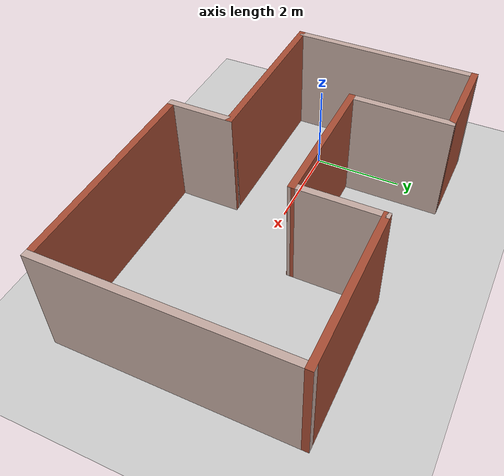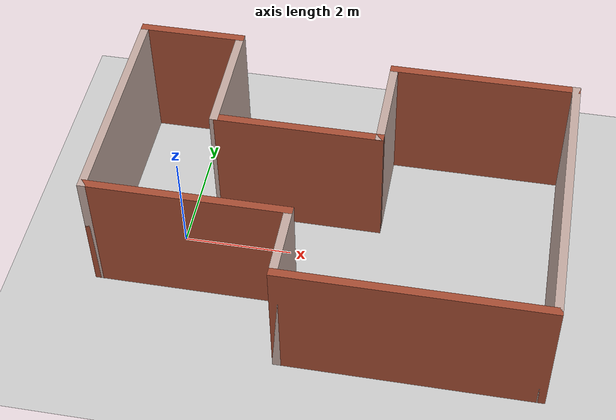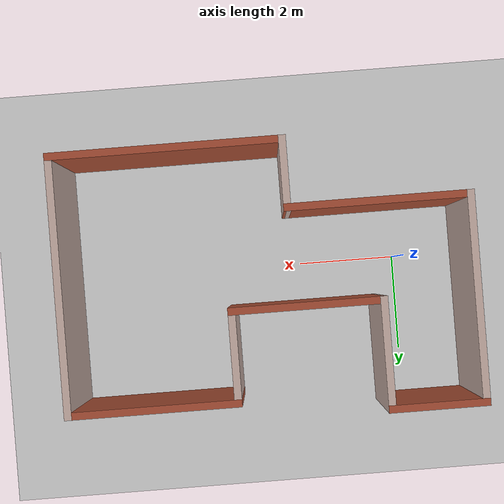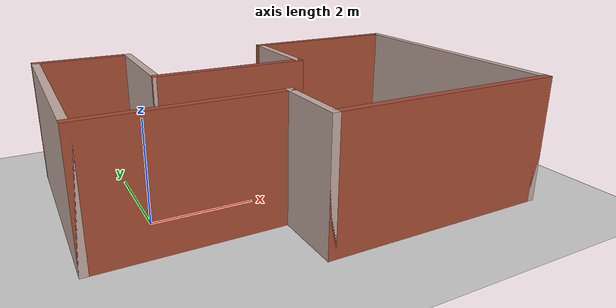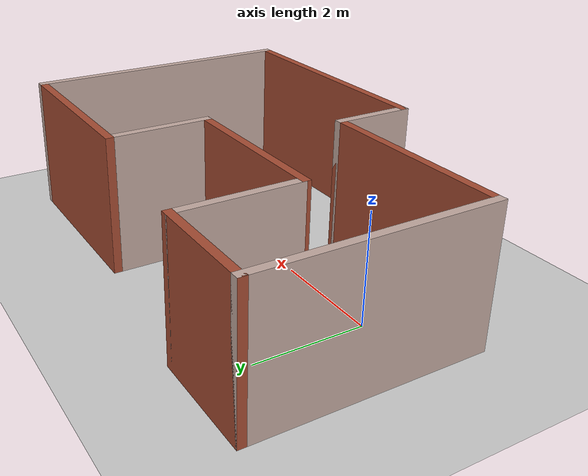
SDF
<sdf version="1.6">
 <world name="default">
  <light name="sun" type="directional">
   <pose>0 0 10 0 -0 0</pose>
   <diffuse>0.8 0.8 0.8 1</diffuse>
   <specular>0.2 0.2 0.2 1</specular>
   <attenuation>
    <range>1000</range>
    <constant>0.9</constant>
    <linear>0.01</linear>
    <quadratic>0.001</quadratic>
   </attenuation>
   <direction>-0.5 0.1 -0.9</direction>
  </light>
  <model name="ground_plane">
   <static>1</static>
   <link name="link">
    <collision name="collision">
     <geometry><plane><normal>0 0 1</normal><size>100 100</size></plane></geometry>
     <surface>
      <contact><collide_bitmask>65535</collide_bitmask></contact>
      <friction><ode><mu>100</mu><mu2>50</mu2></ode></friction>
     </surface>
    </collision>
    <visual name="visual">
     <cast_shadows>0</cast_shadows>
     <geometry><plane><normal>0 0 1</normal><size>100 100</size></plane></geometry>
     <material>
      <script><uri>file://media/materials/scripts/gazebo.material</uri><name>Gazebo/Grey</name></script>
     </material>
    </visual>
   </link>
  </model>
  <gravity>0 0 -9.8</gravity>
  <magnetic_field>6e-06 2.3e-05 -4.2e-05</magnetic_field>
  <atmosphere type="adiabatic"/>
  <physics name="default_physics" default="0" type="ode">
   <max_step_size>0.001</max_step_size>
   <real_time_factor>1</real_time_factor>
   <real_time_update_rate>1000</real_time_update_rate>
  </physics>
  <scene><ambient>0.4 0.4 0.4 1</ambient><background>0.7 0.7 0.7 1</background><shadows>1</shadows></scene>
  <spherical_coordinates>
   <surface_model>EARTH_WGS84</surface_model>
   <latitude_deg>0</latitude_deg>
   <longitude_deg>0</longitude_deg>
   <elevation>0</elevation>
   <heading_deg>0</heading_deg>
  </spherical_coordinates>
  <model name="building">
   <pose>2.75412 0.275911 0 0 -0 0</pose>
   <link name="Wall_15">
    <collision name="Wall_15_Collision">
     <geometry><box><size>2 0.15 2.5</size></box></geometry>
     <pose>0 0 1.25 0 -0 0</pose>
    </collision>
    <visual name="Wall_15_Visual">
     <pose>0 0 1.25 0 -0 0</pose>
     <geometry><box><size>2 0.15 2.5</size></box></geometry>
     <material>
      <script><uri>file://media/materials/scripts/gazebo.material</uri><name>Gazebo/Bricks</name></script>
      <ambient>1 1 1 1</ambient>
     </material>
     <meta><layer>0</layer></meta>
    </visual>
    <pose>-3.175 2.725 0 0 -0 0</pose>
   </link>
   <link name="Wall_16">
    <collision name="Wall_16_Collision">
     <geometry><box><size>2.3 0.15 2.5</size></box></geometry>
     <pose>0 0 1.25 0 -0 0</pose>
    </collision>
    <visual name="Wall_16_Visual">
     <pose>0 0 1.25 0 -0 0</pose>
     <geometry><box><size>2.3 0.15 2.5</size></box></geometry>
     <material>
      <script><uri>file://media/materials/scripts/gazebo.material</uri><name>Gazebo/Grey</name></script>
      <ambient>0.760784 0.662745 0.627451 1</ambient>
     </material>
     <meta><layer>0</layer></meta>
    </visual>
    <pose>-2.25 1.65 0 0 0 -1.5708</pose>
   </link>
   <link name="Wall_17">
    <collision name="Wall_17_Collision">
     <geometry><box><size>3.15 0.15 2.5</size></box></geometry>
     <pose>0 0 1.25 0 -0 0</pose>
    </collision>
    <visual name="Wall_17_Visual">
     <pose>0 0 1.25 0 -0 0</pose>
     <geometry><box><size>3.15 0.15 2.5</size></box></geometry>
     <material>
      <script><uri>file://media/materials/scripts/gazebo.material</uri><name>Gazebo/Bricks</name></script>
      <ambient>1 1 1 1</ambient>
     </material>
     <meta><layer>0</layer></meta>
    </visual>
    <pose>-0.75 0.573894 0 0 0 -0.000737</pose>
   </link>
   <link name="Wall_26">
    <collision name="Wall_26_Collision">
     <geometry><box><size>4.25 0.15 2.5</size></box></geometry>
     <pose>0 0 1.25 0 -0 0</pose>
    </collision>
    <visual name="Wall_26_Visual">
     <pose>0 0 1.25 0 -0 0</pose>
     <geometry><box><size>4.25 0.15 2.5</size></box></geometry>
     <material>
      <script><uri>file://media/materials/scripts/gazebo.material</uri><name>Gazebo/Grey</name></script>
      <ambient>0.760784 0.662745 0.627451 1</ambient>
     </material>
     <meta><layer>0</layer></meta>
    </visual>
    <pose>-4.1 0.675 0 0 0 -1.5708</pose>
   </link>
   <link name="Wall_27">
    <collision name="Wall_27_Collision">
     <geometry><box><size>3.75 0.15 2.5</size></box></geometry>
     <pose>0 0 1.25 0 -0 0</pose>
    </collision>
    <visual name="Wall_27_Visual">
     <pose>0 0 1.25 0 -0 0</pose>
     <geometry><box><size>3.75 0.15 2.5</size></box></geometry>
     <material>
      <script><uri>file://media/materials/scripts/gazebo.material</uri><name>Gazebo/Bricks</name></script>
      <ambient>1 1 1 1</ambient>
     </material>
     <meta><layer>0</layer></meta>
    </visual>
    <pose>-2.3 -1.375 0 0 -0 0</pose>
   </link>
   <link name="Wall_28">
    <collision name="Wall_28_Collision">
     <geometry><box><size>1.5 0.15 2.5</size></box></geometry>
     <pose>0 0 1.25 0 -0 0</pose>
    </collision>
    <visual name="Wall_28_Visual">
     <pose>0 0 1.25 0 -0 0</pose>
     <geometry><box><size>1.5 0.15 2.5</size></box></geometry>
     <material>
      <script><uri>file://media/materials/scripts/gazebo.material</uri><name>Gazebo/Grey</name></script>
      <ambient>0.760784 0.662745 0.627451 1</ambient>
     </material>
     <meta><layer>0</layer></meta>
    </visual>
    <pose>-0.5 -2.05 0 0 0 -1.5708</pose>
   </link>
   <link name="Wall_29">
    <collision name="Wall_29_Collision">
     <geometry><box><size>4.75 0.15 2.5</size></box></geometry>
     <pose>0 0 1.25 0 -0 0</pose>
    </collision>
    <visual name="Wall_29_Visual">
     <pose>0 0 1.25 0 -0 0</pose>
     <geometry><box><size>4.75 0.15 2.5</size></box></geometry>
     <material>
      <script><uri>file://media/materials/scripts/gazebo.material</uri><name>Gazebo/Bricks</name></script>
      <ambient>1 1 1 1</ambient>
     </material>
     <meta><layer>0</layer></meta>
    </visual>
    <pose>1.8 -2.725 0 0 -0 0</pose>
   </link>
   <link name="Wall_30">
    <collision name="Wall_30_Collision">
     <geometry><box><size>5.25 0.15 2.5</size></box></geometry>
     <pose>0 0 1.25 0 -0 0</pose>
    </collision>
    <visual name="Wall_30_Visual">
     <pose>0 0 1.25 0 -0 0</pose>
     <geometry><box><size>5.25 0.15 2.5</size></box></geometry>
     <material>
      <script><uri>file://media/materials/scripts/gazebo.material</uri><name>Gazebo/Grey</name></script>
      <ambient>0.760784 0.662745 0.627451 1</ambient>
     </material>
     <meta><layer>0</layer></meta>
    </visual>
    <pose>4.1 -0.175 0 0 -0 1.5708</pose>
   </link>
   <link name="Wall_31">
    <collision name="Wall_31_Collision">
     <geometry><box><size>3.5 0.15 2.5</size></box></geometry>
     <pose>0 0 1.25 0 -0 0</pose>
    </collision>
    <visual name="Wall_31_Visual">
     <pose>0 0 1.25 0 -0 0</pose>
     <geometry><box><size>3.5 0.15 2.5</size></box></geometry>
     <material>
      <script><uri>file://media/materials/scripts/gazebo.material</uri><name>Gazebo/Bricks</name></script>
      <ambient>1 1 1 1</ambient>
     </material>
     <meta><layer>0</layer></meta>
    </visual>
    <pose>2.425 2.375 0 0 -0 3.14159</pose>
   </link>
   <link name="Wall_32">
    <collision name="Wall_32_Collision">
     <geometry><box><size>1.95 0.15 2.5</size></box></geometry>
     <pose>0 0 1.25 0 -0 0</pose>
    </collision>
    <visual name="Wall_32_Visual">
     <pose>0 0 1.25 0 -0 0</pose>
     <geometry><box><size>1.95 0.15 2.5</size></box></geometry>
     <material>
      <script><uri>file://media/materials/scripts/gazebo.material</uri><name>Gazebo/Grey</name></script>
      <ambient>0.760784 0.662745 0.627451 1</ambient>
     </material>
     <meta><layer>0</layer></meta>
    </visual>
    <pose>0.75 1.475 0 0 0 -1.5708</pose>
   </link>
   <static>1</static>
  </model>
  <plugin filename="libcollision_map_creator.so" name="collision_map_creator"/>
 </world>
</sdf>
